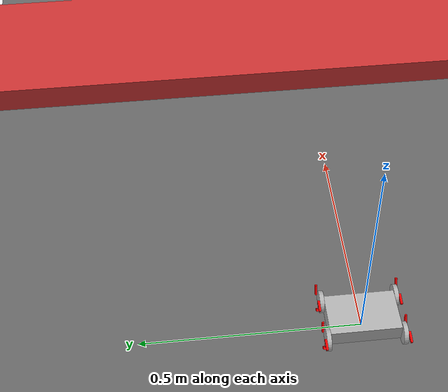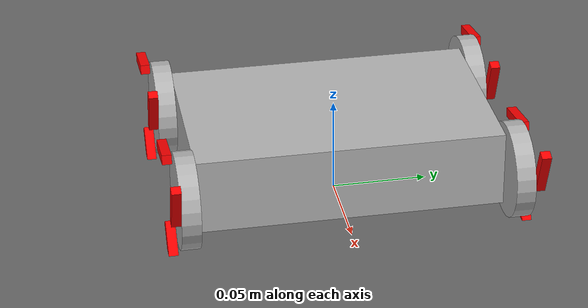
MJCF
<!-- python -m mujoco.viewer -->
<!-- Change: Has added 7 cm step -->

<mujoco model="UGV">
  <default>
    <joint limited="true" damping="0.1" armature="0.01" frictionloss="0.01" />
    <geom condim="4" contype="1" conaffinity="15" friction="1.2 0.05 0.02" solref="0.01 1" />
    <motor ctrllimited="true" />
    <equality solref="0.01 1" />
    <default class="visualgeom">
      <geom material="visualgeom" condim="1" contype="0" conaffinity="0" />
    </default>
  </default>

  <compiler angle="radian" meshdir="meshes" eulerseq="zyx" autolimits="true" />

  <asset>
    <texture name="texplane" type="2d" builtin="checker" rgb1=".0 .0 .0" rgb2=".8 .8 .8" width="100" height="100" />
    <material name="matplane" reflectance="0." texture="texplane" texrepeat="1 1" texuniform="true" />
    <material name="front_left_wheel_0_extension_body_material" rgba="1 0 0 1" />
    <material name="front_left_wheel_1_extension_body_material" rgba="1 0 0 1" />
    <material name="front_left_wheel_2_extension_body_material" rgba="1 0 0 1" />
    <material name="front_right_wheel_0_extension_body_material" rgba="1 0 0 1" />
    <material name="front_right_wheel_1_extension_body_material" rgba="1 0 0 1" />
    <material name="front_right_wheel_2_extension_body_material" rgba="1 0 0 1" />
    <material name="rear_left_wheel_0_extension_body_material" rgba="1 0 0 1" />
    <material name="rear_left_wheel_1_extension_body_material" rgba="1 0 0 1" />
    <material name="rear_left_wheel_2_extension_body_material" rgba="1 0 0 1" />
    <material name="rear_right_wheel_0_extension_body_material" rgba="1 0 0 1" />
    <material name="rear_right_wheel_1_extension_body_material" rgba="1 0 0 1" />
    <material name="rear_right_wheel_2_extension_body_material" rgba="1 0 0 1" />
    <material name="default_material" rgba="0.7 0.7 0.7 1" />
  </asset>

  <worldbody>
    <light directional="true" diffuse="0.4 0.4 0.4" specular="0.1 0.1 0.1" pos="0 0 5.0" dir="0 0 -1" castshadow="false" />
    <light directional="true" diffuse="0.6 0.6 0.6" specular="0.2 0.2 0.2" pos="0 0 4" dir="0 0 -1" />
    <geom name="ground" type="plane" pos="0 0 0" size="10 10 0.001" quat="1 0 0 0" material="matplane" condim="3" conaffinity="15" />
    <geom name="traverse_box" type="box" pos="1.0 0 0.035" size="0.2 5 0.035" rgba="0.8 0.2 0.2 1" />
    <site name="traverse_box_site" pos="1.0 0 0.035" size="0.01" rgba="1 1 0 1"/>

    <body name="root" pos="0 0 0.030117751451163032" quat="1 0 0 0">
      <freejoint name="root" />
      <site name="root_site" pos="0 0 0" quat="1 0 0 0" />
      <body name="chassis" pos="0 0 0" quat="1 0 0 0">
        <inertial pos="0 0 0.02" mass="1.5" diaginertia="0.001363626666666667 0.0005815466666666668 0.001784746666666667" />
        <geom name="chassis_collision_0" pos="0 0 0" quat="1 0 0 0" type="box" size="0.05 0.08 0.02" rgba="0 0 0 0" />
        <geom name="chassis_visual_0" class="visualgeom" pos="0 0 0" quat="1 0 0 0" material="default_material" type="box" size="0.05 0.08 0.02" />
        <body name="front_left_wheel_body" pos="0.05 -0.085 0" quat="1.0 0.0 0.0 0.0">
          <joint name="front_left_wheel_joint" type="hinge" axis="0 1 0" limited="false"/>
          <inertial pos="0 0 0" quat="0.7071067811865476 0.7071067811865476 0.0 0.0" mass="0.01963495408493621" diaginertia="3.231586193145752e-06 3.231586193145752e-06 6.135923151542567e-06" />
          <geom name="front_left_wheel_body_collision_0" pos="0 0 0" quat="0.7071067811865476 0.7071067811865476 0.0 0.0" type="cylinder" size="0.025 0.005" rgba="0 0 0 0" />
          <geom name="front_left_wheel_body_visual_0" class="visualgeom" pos="0 0 0" quat="0.7071067811865476 0.7071067811865476 0.0 0.0" material="default_material" type="cylinder" size="0.025 0.005" />
          <body name="front_left_wheel_0_extension_body" pos="0.020833333333333336 -0.0075 0" quat="0.573576436351046 0.0 0.8191520442889918 0.0">
            <joint name="front_left_wheel_0_extension_joint" type="hinge" range="-1.047 3.427" axis="0 1 0" />
            <inertial pos="-0.0125 0 0" quat="1.0 0.0 0.0 0.0" mass="0.02" diaginertia="2.604166666666667e-09 3.385416666666667e-08 3.385416666666667e-08" />
            <geom name="front_left_wheel_0_extension_body_collision_0" pos="-0.0125 0 0" quat="1.0 0.0 0.0 0.0" type="box" size="0.0125 0.0025 0.0025" rgba="0 0 0 0" />
            <geom name="front_left_wheel_0_extension_body_visual_0" class="visualgeom" pos="-0.0125 0 0" quat="1.0 0.0 0.0 0.0" material="front_left_wheel_0_extension_body_material" type="box" size="0.0125 0.0025 0.0025" />
          </body>
          <body name="front_left_wheel_1_extension_body" pos="-0.010416666666666663 -0.0075 0.018042195912175808" quat="0.9961946980917455 0.0 -0.0871557427476581 0.0">
            <joint name="front_left_wheel_1_extension_joint" type="hinge" range="-1.047 3.427" axis="0 1 0" />
            <inertial pos="-0.0125 0 0" quat="1.0 0.0 0.0 0.0" mass="0.02" diaginertia="2.604166666666667e-09 3.385416666666667e-08 3.385416666666667e-08" />
            <geom name="front_left_wheel_1_extension_body_collision_0" pos="-0.0125 0 0" quat="1.0 0.0 0.0 0.0" type="box" size="0.0125 0.0025 0.0025" rgba="0 0 0 0" />
            <geom name="front_left_wheel_1_extension_body_visual_0" class="visualgeom" pos="-0.0125 0 0" quat="1.0 0.0 0.0 0.0" material="front_left_wheel_1_extension_body_material" type="box" size="0.0125 0.0025 0.0025" />
          </body>
          <body name="front_left_wheel_2_extension_body" pos="-0.010416666666666676 -0.0075 -0.018042195912175804" quat="0.4226182617406996 0.0 -0.9063077870366498 0.0">
            <joint name="front_left_wheel_2_extension_joint" type="hinge" range="-1.047 3.427" axis="0 1 0" />
            <inertial pos="-0.0125 0 0" quat="1.0 0.0 0.0 0.0" mass="0.02" diaginertia="2.604166666666667e-09 3.385416666666667e-08 3.385416666666667e-08" />
            <geom name="front_left_wheel_2_extension_body_collision_0" pos="-0.0125 0 0" quat="1.0 0.0 0.0 0.0" type="box" size="0.0125 0.0025 0.0025" rgba="0 0 0 0" />
            <geom name="front_left_wheel_2_extension_body_visual_0" class="visualgeom" pos="-0.0125 0 0" quat="1.0 0.0 0.0 0.0" material="front_left_wheel_2_extension_body_material" type="box" size="0.0125 0.0025 0.0025" />
          </body>
        </body>
        <body name="front_right_wheel_body" pos="0.05 0.085 0" quat="1.0 0.0 0.0 0.0">
          <joint name="front_right_wheel_joint" type="hinge" axis="0 1 0" limited="false"/>
          <inertial pos="0 0 0" quat="0.7071067811865476 0.7071067811865476 0.0 0.0" mass="0.01963495408493621" diaginertia="3.231586193145752e-06 3.231586193145752e-06 6.135923151542567e-06" />
          <geom name="front_right_wheel_body_collision_0" pos="0 0 0" quat="0.7071067811865476 0.7071067811865476 0.0 0.0" type="cylinder" size="0.025 0.005" rgba="0 0 0 0" />
          <geom name="front_right_wheel_body_visual_0" class="visualgeom" pos="0 0 0" quat="0.7071067811865476 0.7071067811865476 0.0 0.0" material="default_material" type="cylinder" size="0.025 0.005" />
          <body name="front_right_wheel_0_extension_body" pos="0.020833333333333336 0.0075 0" quat="0.573576436351046 0.0 0.8191520442889918 0.0">
            <joint name="front_right_wheel_0_extension_joint" type="hinge" range="-1.047 3.427" axis="0 1 0" />
            <inertial pos="-0.0125 0 0" quat="1.0 0.0 0.0 0.0" mass="0.02" diaginertia="2.604166666666667e-09 3.385416666666667e-08 3.385416666666667e-08" />
            <geom name="front_right_wheel_0_extension_body_collision_0" pos="-0.0125 0 0" quat="1.0 0.0 0.0 0.0" type="box" size="0.0125 0.0025 0.0025" rgba="0 0 0 0" />
            <geom name="front_right_wheel_0_extension_body_visual_0" class="visualgeom" pos="-0.0125 0 0" quat="1.0 0.0 0.0 0.0" material="front_right_wheel_0_extension_body_material" type="box" size="0.0125 0.0025 0.0025" />
          </body>
          <body name="front_right_wheel_1_extension_body" pos="-0.010416666666666663 0.0075 0.018042195912175808" quat="0.9961946980917455 0.0 -0.0871557427476581 0.0">
            <joint name="front_right_wheel_1_extension_joint" type="hinge" range="-1.047 3.427" axis="0 1 0" />
            <inertial pos="-0.0125 0 0" quat="1.0 0.0 0.0 0.0" mass="0.02" diaginertia="2.604166666666667e-09 3.385416666666667e-08 3.385416666666667e-08" />
            <geom name="front_right_wheel_1_extension_body_collision_0" pos="-0.0125 0 0" quat="1.0 0.0 0.0 0.0" type="box" size="0.0125 0.0025 0.0025" rgba="0 0 0 0" />
            <geom name="front_right_wheel_1_extension_body_visual_0" class="visualgeom" pos="-0.0125 0 0" quat="1.0 0.0 0.0 0.0" material="front_right_wheel_1_extension_body_material" type="box" size="0.0125 0.0025 0.0025" />
          </body>
          <body name="front_right_wheel_2_extension_body" pos="-0.010416666666666676 0.0075 -0.018042195912175804" quat="0.4226182617406996 0.0 -0.9063077870366498 0.0">
            <joint name="front_right_wheel_2_extension_joint" type="hinge" range="-1.047 3.427" axis="0 1 0" />
            <inertial pos="-0.0125 0 0" quat="1.0 0.0 0.0 0.0" mass="0.02" diaginertia="2.604166666666667e-09 3.385416666666667e-08 3.385416666666667e-08" />
            <geom name="front_right_wheel_2_extension_body_collision_0" pos="-0.0125 0 0" quat="1.0 0.0 0.0 0.0" type="box" size="0.0125 0.0025 0.0025" rgba="0 0 0 0" />
            <geom name="front_right_wheel_2_extension_body_visual_0" class="visualgeom" pos="-0.0125 0 0" quat="1.0 0.0 0.0 0.0" material="front_right_wheel_2_extension_body_material" type="box" size="0.0125 0.0025 0.0025" />
          </body>
        </body>
        <body name="rear_left_wheel_body" pos="-0.05 -0.085 0" quat="1.0 0.0 0.0 0.0">
          <joint name="rear_left_wheel_joint" type="hinge" axis="0 1 0" limited="false"/>
          <inertial pos="0 0 0" quat="0.7071067811865476 0.7071067811865476 0.0 0.0" mass="0.01963495408493621" diaginertia="3.231586193145752e-06 3.231586193145752e-06 6.135923151542567e-06" />
          <geom name="rear_left_wheel_body_collision_0" pos="0 0 0" quat="0.7071067811865476 0.7071067811865476 0.0 0.0" type="cylinder" size="0.025 0.005" rgba="0 0 0 0" />
          <geom name="rear_left_wheel_body_visual_0" class="visualgeom" pos="0 0 0" quat="0.7071067811865476 0.7071067811865476 0.0 0.0" material="default_material" type="cylinder" size="0.025 0.005" />
          <body name="rear_left_wheel_0_extension_body" pos="0.020833333333333336 -0.0075 0" quat="0.573576436351046 0.0 0.8191520442889918 0.0">
            <joint name="rear_left_wheel_0_extension_joint" type="hinge" range="-1.047 3.427" axis="0 1 0" />
            <inertial pos="-0.0125 0 0" quat="1.0 0.0 0.0 0.0" mass="0.02" diaginertia="2.604166666666667e-09 3.385416666666667e-08 3.385416666666667e-08" />
            <geom name="rear_left_wheel_0_extension_body_collision_0" pos="-0.0125 0 0" quat="1.0 0.0 0.0 0.0" type="box" size="0.0125 0.0025 0.0025" rgba="0 0 0 0" />
            <geom name="rear_left_wheel_0_extension_body_visual_0" class="visualgeom" pos="-0.0125 0 0" quat="1.0 0.0 0.0 0.0" material="rear_left_wheel_0_extension_body_material" type="box" size="0.0125 0.0025 0.0025" />
          </body>
          <body name="rear_left_wheel_1_extension_body" pos="-0.010416666666666663 -0.0075 0.018042195912175808" quat="0.9961946980917455 0.0 -0.0871557427476581 0.0">
            <joint name="rear_left_wheel_1_extension_joint" type="hinge" range="-1.047 3.427" axis="0 1 0" />
            <inertial pos="-0.0125 0 0" quat="1.0 0.0 0.0 0.0" mass="0.02" diaginertia="2.604166666666667e-09 3.385416666666667e-08 3.385416666666667e-08" />
            <geom name="rear_left_wheel_1_extension_body_collision_0" pos="-0.0125 0 0" quat="1.0 0.0 0.0 0.0" type="box" size="0.0125 0.0025 0.0025" rgba="0 0 0 0" />
            <geom name="rear_left_wheel_1_extension_body_visual_0" class="visualgeom" pos="-0.0125 0 0" quat="1.0 0.0 0.0 0.0" material="rear_left_wheel_1_extension_body_material" type="box" size="0.0125 0.0025 0.0025" />
          </body>
          <body name="rear_left_wheel_2_extension_body" pos="-0.010416666666666676 -0.0075 -0.018042195912175804" quat="0.4226182617406996 0.0 -0.9063077870366498 0.0">
            <joint name="rear_left_wheel_2_extension_joint" type="hinge" range="-1.047 3.427" axis="0 1 0" />
            <inertial pos="-0.0125 0 0" quat="1.0 0.0 0.0 0.0" mass="0.02" diaginertia="2.604166666666667e-09 3.385416666666667e-08 3.385416666666667e-08" />
            <geom name="rear_left_wheel_2_extension_body_collision_0" pos="-0.0125 0 0" quat="1.0 0.0 0.0 0.0" type="box" size="0.0125 0.0025 0.0025" rgba="0 0 0 0" />
            <geom name="rear_left_wheel_2_extension_body_visual_0" class="visualgeom" pos="-0.0125 0 0" quat="1.0 0.0 0.0 0.0" material="rear_left_wheel_2_extension_body_material" type="box" size="0.0125 0.0025 0.0025" />
          </body>
        </body>
        <body name="rear_right_wheel_body" pos="-0.05 0.085 0" quat="1.0 0.0 0.0 0.0">
          <joint name="rear_right_wheel_joint" type="hinge" axis="0 1 0" limited="false"/>
          <inertial pos="0 0 0" quat="0.7071067811865476 0.7071067811865476 0.0 0.0" mass="0.01963495408493621" diaginertia="3.231586193145752e-06 3.231586193145752e-06 6.135923151542567e-06" />
          <geom name="rear_right_wheel_body_collision_0" pos="0 0 0" quat="0.7071067811865476 0.7071067811865476 0.0 0.0" type="cylinder" size="0.025 0.005" rgba="0 0 0 0" />
          <geom name="rear_right_wheel_body_visual_0" class="visualgeom" pos="0 0 0" quat="0.7071067811865476 0.7071067811865476 0.0 0.0" material="default_material" type="cylinder" size="0.025 0.005" />
          <body name="rear_right_wheel_0_extension_body" pos="0.020833333333333336 0.0075 0" quat="0.573576436351046 0.0 0.8191520442889918 0.0">
            <joint name="rear_right_wheel_0_extension_joint" type="hinge" range="-1.047 3.427" axis="0 1 0" />
            <inertial pos="-0.0125 0 0" quat="1.0 0.0 0.0 0.0" mass="0.02" diaginertia="2.604166666666667e-09 3.385416666666667e-08 3.385416666666667e-08" />
            <geom name="rear_right_wheel_0_extension_body_collision_0" pos="-0.0125 0 0" quat="1.0 0.0 0.0 0.0" type="box" size="0.0125 0.0025 0.0025" rgba="0 0 0 0" />
            <geom name="rear_right_wheel_0_extension_body_visual_0" class="visualgeom" pos="-0.0125 0 0" quat="1.0 0.0 0.0 0.0" material="rear_right_wheel_0_extension_body_material" type="box" size="0.0125 0.0025 0.0025" />
          </body>
          <body name="rear_right_wheel_1_extension_body" pos="-0.010416666666666663 0.0075 0.018042195912175808" quat="0.9961946980917455 0.0 -0.0871557427476581 0.0">
            <joint name="rear_right_wheel_1_extension_joint" type="hinge" range="-1.047 3.427" axis="0 1 0" />
            <inertial pos="-0.0125 0 0" quat="1.0 0.0 0.0 0.0" mass="0.02" diaginertia="2.604166666666667e-09 3.385416666666667e-08 3.385416666666667e-08" />
            <geom name="rear_right_wheel_1_extension_body_collision_0" pos="-0.0125 0 0" quat="1.0 0.0 0.0 0.0" type="box" size="0.0125 0.0025 0.0025" rgba="0 0 0 0" />
            <geom name="rear_right_wheel_1_extension_body_visual_0" class="visualgeom" pos="-0.0125 0 0" quat="1.0 0.0 0.0 0.0" material="rear_right_wheel_1_extension_body_material" type="box" size="0.0125 0.0025 0.0025" />
          </body>
          <body name="rear_right_wheel_2_extension_body" pos="-0.010416666666666676 0.0075 -0.018042195912175804" quat="0.4226182617406996 0.0 -0.9063077870366498 0.0">
            <joint name="rear_right_wheel_2_extension_joint" type="hinge" range="-1.047 3.427" axis="0 1 0" />
            <inertial pos="-0.0125 0 0" quat="1.0 0.0 0.0 0.0" mass="0.02" diaginertia="2.604166666666667e-09 3.385416666666667e-08 3.385416666666667e-08" />
            <geom name="rear_right_wheel_2_extension_body_collision_0" pos="-0.0125 0 0" quat="1.0 0.0 0.0 0.0" type="box" size="0.0125 0.0025 0.0025" rgba="0 0 0 0" />
            <geom name="rear_right_wheel_2_extension_body_visual_0" class="visualgeom" pos="-0.0125 0 0" quat="1.0 0.0 0.0 0.0" material="rear_right_wheel_2_extension_body_material" type="box" size="0.0125 0.0025 0.0025" />
          </body>
        </body>
      </body>
    </body>
  </worldbody>

<equality>
  <!-- Front-left: leg1 = leg0, leg2 = leg0 -->
  <joint name="eq_fl_10" joint1="front_left_wheel_1_extension_joint" joint2="front_left_wheel_0_extension_joint" polycoef="0 1 0 0 0"/>
  <joint name="eq_fl_20" joint1="front_left_wheel_2_extension_joint" joint2="front_left_wheel_0_extension_joint" polycoef="0 1 0 0 0"/>

  <!-- Front-right -->
  <joint name="eq_fr_10" joint1="front_right_wheel_1_extension_joint" joint2="front_right_wheel_0_extension_joint" polycoef="0 1 0 0 0"/>
  <joint name="eq_fr_20" joint1="front_right_wheel_2_extension_joint" joint2="front_right_wheel_0_extension_joint" polycoef="0 1 0 0 0"/>

  <!-- Rear-left -->
  <joint name="eq_rl_10" joint1="rear_left_wheel_1_extension_joint" joint2="rear_left_wheel_0_extension_joint" polycoef="0 1 0 0 0"/>
  <joint name="eq_rl_20" joint1="rear_left_wheel_2_extension_joint" joint2="rear_left_wheel_0_extension_joint" polycoef="0 1 0 0 0"/>

  <!-- Rear-right -->
  <joint name="eq_rr_10" joint1="rear_right_wheel_1_extension_joint" joint2="rear_right_wheel_0_extension_joint" polycoef="0 1 0 0 0"/>
  <joint name="eq_rr_20" joint1="rear_right_wheel_2_extension_joint" joint2="rear_right_wheel_0_extension_joint" polycoef="0 1 0 0 0"/>
</equality>

<actuator>
  <!-- Wheel torques (N·m) -->
  <motor name="front_left_wheel_joint_ctrl"  joint="front_left_wheel_joint"  ctrllimited="true" ctrlrange="-0.8 0.8" />
  <motor name="front_right_wheel_joint_ctrl" joint="front_right_wheel_joint" ctrllimited="true" ctrlrange="-0.8 0.8" />
  <motor name="rear_left_wheel_joint_ctrl"   joint="rear_left_wheel_joint"   ctrllimited="true" ctrlrange="-0.8 0.8" />
  <motor name="rear_right_wheel_joint_ctrl"  joint="rear_right_wheel_joint"  ctrllimited="true" ctrlrange="-0.8 0.8" />

  <!-- Leg extension torques (N·m) -->
  <motor name="front_left_wheel_0_extension_joint_ctrl"  joint="front_left_wheel_0_extension_joint"  ctrllimited="true" ctrlrange="-0.6 0.6" />

  <motor name="front_right_wheel_0_extension_joint_ctrl" joint="front_right_wheel_0_extension_joint" ctrllimited="true" ctrlrange="-0.6 0.6" />

  <motor name="rear_left_wheel_0_extension_joint_ctrl"   joint="rear_left_wheel_0_extension_joint"   ctrllimited="true" ctrlrange="-0.6 0.6" />

  <motor name="rear_right_wheel_0_extension_joint_ctrl"  joint="rear_right_wheel_0_extension_joint"  ctrllimited="true" ctrlrange="-0.6 0.6" />
</actuator>

  <sensor>
    <framepos name="base_link_pos" objtype="site" objname="root_site" />
    <framequat name="base_link_quat" objtype="site" objname="root_site" />
    <framelinvel name="base_link_vel" objtype="site" objname="root_site" />
    <frameangvel name="base_link_ang_vel" objtype="site" objname="root_site" />

    <accelerometer name="root_acc" site="root_site"/>
    <gyro          name="root_gyro" site="root_site"/>
    <touch name="box_touch" site="traverse_box_site"/>

  </sensor>
</mujoco>
